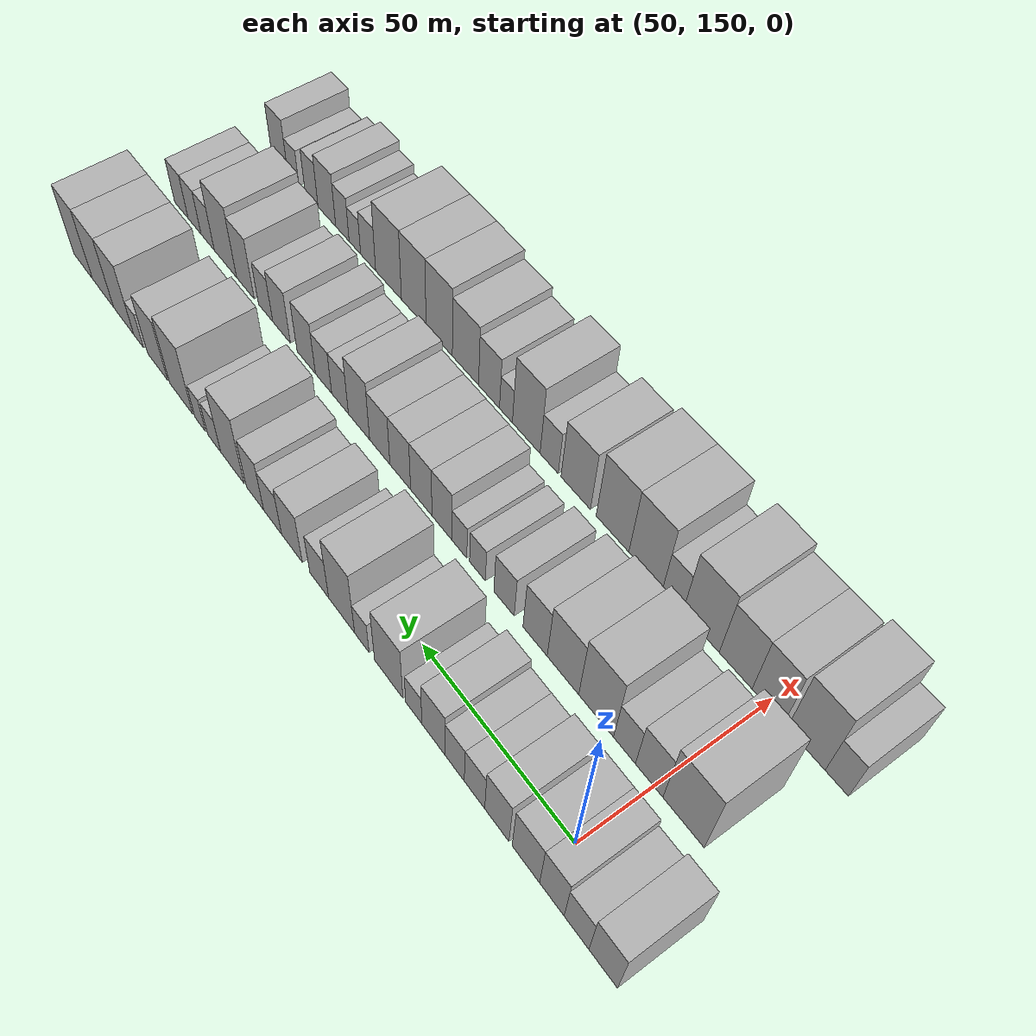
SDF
<sdf version="1.6">
 <world name="default">
  <model name="building_49">
   <static>1</static>
   <pose>50.0000 129.5451 0 0.000000 0.000000 0.000000</pose>
   <link name="link">
    <pose>0 0 9.00 0 0 0</pose>
    <collision name="collision"><geometry><box><size>20.0000 8.0616 18.0000</size></box></geometry></collision>
    <visual name="visual">
     <cast_shadows>0</cast_shadows>
     <geometry><box><size>20.0000 8.0616 18.0000</size></box></geometry>
     <material>
      <script>
       <uri>model://HANNAS_wall/materials/scripts</uri>
       <uri>model://HANNAS_wall/materials/textures</uri>
       <name>vrc/HANNAS_wall</name>
      </script>
     </material>
    </visual>
   </link>
  </model>
  <model name="building_50">
   <static>1</static>
   <pose>50.0000 137.1619 0 0.000000 0.000000 0.000000</pose>
   <link name="link">
    <pose>0 0 7.50 0 0 0</pose>
    <collision name="collision"><geometry><box><size>20.0000 7.1721 15.0000</size></box></geometry></collision>
    <visual name="visual">
     <cast_shadows>0</cast_shadows>
     <geometry><box><size>20.0000 7.1721 15.0000</size></box></geometry>
     <material>
      <script>
       <uri>model://HANNAS_wall/materials/scripts</uri>
       <uri>model://HANNAS_wall/materials/textures</uri>
       <name>vrc/HANNAS_wall</name>
      </script>
     </material>
    </visual>
   </link>
  </model>
  <model name="building_51">
   <static>1</static>
   <pose>50.0000 144.3890 0 0.000000 0.000000 0.000000</pose>
   <link name="link">
    <pose>0 0 9.00 0 0 0</pose>
    <collision name="collision"><geometry><box><size>20.0000 7.2822 18.0000</size></box></geometry></collision>
    <visual name="visual">
     <cast_shadows>0</cast_shadows>
     <geometry><box><size>20.0000 7.2822 18.0000</size></box></geometry>
     <material>
      <script>
       <uri>model://HANNAS_wall/materials/scripts</uri>
       <uri>model://HANNAS_wall/materials/textures</uri>
       <name>vrc/HANNAS_wall</name>
      </script>
     </material>
    </visual>
   </link>
  </model>
  <model name="building_52">
   <static>1</static>
   <pose>50.0000 152.2373 0 0.000000 0.000000 0.000000</pose>
   <link name="link">
    <pose>0 0 9.00 0 0 0</pose>
    <collision name="collision"><geometry><box><size>20.0000 8.4143 18.0000</size></box></geometry></collision>
    <visual name="visual">
     <cast_shadows>0</cast_shadows>
     <geometry><box><size>20.0000 8.4143 18.0000</size></box></geometry>
     <material>
      <script>
       <uri>model://HANNAS_wall/materials/scripts</uri>
       <uri>model://HANNAS_wall/materials/textures</uri>
       <name>vrc/HANNAS_wall</name>
      </script>
     </material>
    </visual>
   </link>
  </model>
  <model name="building_53">
   <static>1</static>
   <pose>50.0000 161.2836 0 0.000000 0.000000 0.000000</pose>
   <link name="link">
    <pose>0 0 9.00 0 0 0</pose>
    <collision name="collision"><geometry><box><size>20.0000 7.6783 18.0000</size></box></geometry></collision>
    <visual name="visual">
     <cast_shadows>0</cast_shadows>
     <geometry><box><size>20.0000 7.6783 18.0000</size></box></geometry>
     <material>
      <script>
       <uri>model://HANNAS_wall/materials/scripts</uri>
       <uri>model://HANNAS_wall/materials/textures</uri>
       <name>vrc/HANNAS_wall</name>
      </script>
     </material>
    </visual>
   </link>
  </model>
  <model name="building_54">
   <static>1</static>
   <pose>50.0000 168.4406 0 0.000000 0.000000 0.000000</pose>
   <link name="link">
    <pose>0 0 7.50 0 0 0</pose>
    <collision name="collision"><geometry><box><size>20.0000 6.6355 15.0000</size></box></geometry></collision>
    <visual name="visual">
     <cast_shadows>0</cast_shadows>
     <geometry><box><size>20.0000 6.6355 15.0000</size></box></geometry>
     <material>
      <script>
       <uri>model://HANNAS_wall/materials/scripts</uri>
       <uri>model://HANNAS_wall/materials/textures</uri>
       <name>vrc/HANNAS_wall</name>
      </script>
     </material>
    </visual>
   </link>
  </model>
  <model name="building_55">
   <static>1</static>
   <pose>50.0000 174.9485 0 0.000000 0.000000 0.000000</pose>
   <link name="link">
    <pose>0 0 7.50 0 0 0</pose>
    <collision name="collision"><geometry><box><size>20.0000 6.3804 15.0000</size></box></geometry></collision>
    <visual name="visual">
     <cast_shadows>0</cast_shadows>
     <geometry><box><size>20.0000 6.3804 15.0000</size></box></geometry>
     <material>
      <script>
       <uri>model://HANNAS_wall/materials/scripts</uri>
       <uri>model://HANNAS_wall/materials/textures</uri>
       <name>vrc/HANNAS_wall</name>
      </script>
     </material>
    </visual>
   </link>
  </model>
  <model name="building_56">
   <static>1</static>
   <pose>50.0000 182.0688 0 0.000000 0.000000 0.000000</pose>
   <link name="link">
    <pose>0 0 9.00 0 0 0</pose>
    <collision name="collision"><geometry><box><size>20.0000 7.8603 18.0000</size></box></geometry></collision>
    <visual name="visual">
     <cast_shadows>0</cast_shadows>
     <geometry><box><size>20.0000 7.8603 18.0000</size></box></geometry>
     <material>
      <script>
       <uri>model://HANNAS_wall/materials/scripts</uri>
       <uri>model://HANNAS_wall/materials/textures</uri>
       <name>vrc/HANNAS_wall</name>
      </script>
     </material>
    </visual>
   </link>
  </model>
  <model name="building_57">
   <static>1</static>
   <pose>50.0000 188.8283 0 0.000000 0.000000 0.000000</pose>
   <link name="link">
    <pose>0 0 6.00 0 0 0</pose>
    <collision name="collision"><geometry><box><size>20.0000 5.6586 12.0000</size></box></geometry></collision>
    <visual name="visual">
     <cast_shadows>0</cast_shadows>
     <geometry><box><size>20.0000 5.6586 12.0000</size></box></geometry>
     <material>
      <script>
       <uri>model://HANNAS_wall/materials/scripts</uri>
       <uri>model://HANNAS_wall/materials/textures</uri>
       <name>vrc/HANNAS_wall</name>
      </script>
     </material>
    </visual>
   </link>
  </model>
  <model name="building_58">
   <static>1</static>
   <pose>50.0000 197.7413 0 0.000000 0.000000 0.000000</pose>
   <link name="link">
    <pose>0 0 10.50 0 0 0</pose>
    <collision name="collision"><geometry><box><size>20.0000 10.1673 21.0000</size></box></geometry></collision>
    <visual name="visual">
     <cast_shadows>0</cast_shadows>
     <geometry><box><size>20.0000 10.1673 21.0000</size></box></geometry>
     <material>
      <script>
       <uri>model://HANNAS_wall/materials/scripts</uri>
       <uri>model://HANNAS_wall/materials/textures</uri>
       <name>vrc/HANNAS_wall</name>
      </script>
     </material>
    </visual>
   </link>
  </model>
  <model name="building_59">
   <static>1</static>
   <pose>50.0000 207.5146 0 0.000000 0.000000 0.000000</pose>
   <link name="link">
    <pose>0 0 6.00 0 0 0</pose>
    <collision name="collision"><geometry><box><size>20.0000 5.3793 12.0000</size></box></geometry></collision>
    <visual name="visual">
     <cast_shadows>0</cast_shadows>
     <geometry><box><size>20.0000 5.3793 12.0000</size></box></geometry>
     <material>
      <script>
       <uri>model://HANNAS_wall/materials/scripts</uri>
       <uri>model://HANNAS_wall/materials/textures</uri>
       <name>vrc/HANNAS_wall</name>
      </script>
     </material>
    </visual>
   </link>
  </model>
  <model name="building_60">
   <static>1</static>
   <pose>50.0000 215.1342 0 0.000000 0.000000 0.000000</pose>
   <link name="link">
    <pose>0 0 12.00 0 0 0</pose>
    <collision name="collision"><geometry><box><size>20.0000 9.8598 24.0000</size></box></geometry></collision>
    <visual name="visual">
     <cast_shadows>0</cast_shadows>
     <geometry><box><size>20.0000 9.8598 24.0000</size></box></geometry>
     <material>
      <script>
       <uri>model://HANNAS_wall/materials/scripts</uri>
       <uri>model://HANNAS_wall/materials/textures</uri>
       <name>vrc/HANNAS_wall</name>
      </script>
     </material>
    </visual>
   </link>
  </model>
  <model name="building_61">
   <static>1</static>
   <pose>50.0000 223.7643 0 0.000000 0.000000 0.000000</pose>
   <link name="link">
    <pose>0 0 7.50 0 0 0</pose>
    <collision name="collision"><geometry><box><size>20.0000 7.4004 15.0000</size></box></geometry></collision>
    <visual name="visual">
     <cast_shadows>0</cast_shadows>
     <geometry><box><size>20.0000 7.4004 15.0000</size></box></geometry>
     <material>
      <script>
       <uri>model://HANNAS_wall/materials/scripts</uri>
       <uri>model://HANNAS_wall/materials/textures</uri>
       <name>vrc/HANNAS_wall</name>
      </script>
     </material>
    </visual>
   </link>
  </model>
  <model name="building_62">
   <static>1</static>
   <pose>50.0000 234.6617 0 0.000000 0.000000 0.000000</pose>
   <link name="link">
    <pose>0 0 9.00 0 0 0</pose>
    <collision name="collision"><geometry><box><size>20.0000 8.3944 18.0000</size></box></geometry></collision>
    <visual name="visual">
     <cast_shadows>0</cast_shadows>
     <geometry><box><size>20.0000 8.3944 18.0000</size></box></geometry>
     <material>
      <script>
       <uri>model://HANNAS_wall/materials/scripts</uri>
       <uri>model://HANNAS_wall/materials/textures</uri>
       <name>vrc/HANNAS_wall</name>
      </script>
     </material>
    </visual>
   </link>
  </model>
  <model name="building_63">
   <static>1</static>
   <pose>50.0000 242.5920 0 0.000000 0.000000 0.000000</pose>
   <link name="link">
    <pose>0 0 7.50 0 0 0</pose>
    <collision name="collision"><geometry><box><size>20.0000 7.4664 15.0000</size></box></geometry></collision>
    <visual name="visual">
     <cast_shadows>0</cast_shadows>
     <geometry><box><size>20.0000 7.4664 15.0000</size></box></geometry>
     <material>
      <script>
       <uri>model://HANNAS_wall/materials/scripts</uri>
       <uri>model://HANNAS_wall/materials/textures</uri>
       <name>vrc/HANNAS_wall</name>
      </script>
     </material>
    </visual>
   </link>
  </model>
  <model name="building_64">
   <static>1</static>
   <pose>50.0000 250.0155 0 0.000000 0.000000 0.000000</pose>
   <link name="link">
    <pose>0 0 9.00 0 0 0</pose>
    <collision name="collision"><geometry><box><size>20.0000 7.3805 18.0000</size></box></geometry></collision>
    <visual name="visual">
     <cast_shadows>0</cast_shadows>
     <geometry><box><size>20.0000 7.3805 18.0000</size></box></geometry>
     <material>
      <script>
       <uri>model://HANNAS_wall/materials/scripts</uri>
       <uri>model://HANNAS_wall/materials/textures</uri>
       <name>vrc/HANNAS_wall</name>
      </script>
     </material>
    </visual>
   </link>
  </model>
  <model name="building_65">
   <static>1</static>
   <pose>50.0000 259.8513 0 0.000000 0.000000 0.000000</pose>
   <link name="link">
    <pose>0 0 12.00 0 0 0</pose>
    <collision name="collision"><geometry><box><size>20.0000 10.2910 24.0000</size></box></geometry></collision>
    <visual name="visual">
     <cast_shadows>0</cast_shadows>
     <geometry><box><size>20.0000 10.2910 24.0000</size></box></geometry>
     <material>
      <script>
       <uri>model://HANNAS_wall/materials/scripts</uri>
       <uri>model://HANNAS_wall/materials/textures</uri>
       <name>vrc/HANNAS_wall</name>
      </script>
     </material>
    </visual>
   </link>
  </model>
  <model name="building_66">
   <static>1</static>
   <pose>50.0000 267.9098 0 0.000000 0.000000 0.000000</pose>
   <link name="link">
    <pose>0 0 6.00 0 0 0</pose>
    <collision name="collision"><geometry><box><size>20.0000 5.8261 12.0000</size></box></geometry></collision>
    <visual name="visual">
     <cast_shadows>0</cast_shadows>
     <geometry><box><size>20.0000 5.8261 12.0000</size></box></geometry>
     <material>
      <script>
       <uri>model://HANNAS_wall/materials/scripts</uri>
       <uri>model://HANNAS_wall/materials/textures</uri>
       <name>vrc/HANNAS_wall</name>
      </script>
     </material>
    </visual>
   </link>
  </model>
  <model name="building_67">
   <static>1</static>
   <pose>50.0000 274.2512 0 0.000000 0.000000 0.000000</pose>
   <link name="link">
    <pose>0 0 6.00 0 0 0</pose>
    <collision name="collision"><geometry><box><size>20.0000 4.8566 12.0000</size></box></geometry></collision>
    <visual name="visual">
     <cast_shadows>0</cast_shadows>
     <geometry><box><size>20.0000 4.8566 12.0000</size></box></geometry>
     <material>
      <script>
       <uri>model://HANNAS_wall/materials/scripts</uri>
       <uri>model://HANNAS_wall/materials/textures</uri>
       <name>vrc/HANNAS_wall</name>
      </script>
     </material>
    </visual>
   </link>
  </model>
  <model name="building_68">
   <static>1</static>
   <pose>50.0000 283.0747 0 0.000000 0.000000 0.000000</pose>
   <link name="link">
    <pose>0 0 12.00 0 0 0</pose>
    <collision name="collision"><geometry><box><size>20.0000 10.7905 24.0000</size></box></geometry></collision>
    <visual name="visual">
     <cast_shadows>0</cast_shadows>
     <geometry><box><size>20.0000 10.7905 24.0000</size></box></geometry>
     <material>
      <script>
       <uri>model://HANNAS_wall/materials/scripts</uri>
       <uri>model://HANNAS_wall/materials/textures</uri>
       <name>vrc/HANNAS_wall</name>
      </script>
     </material>
    </visual>
   </link>
  </model>
  <model name="building_69">
   <static>1</static>
   <pose>50.0000 294.3705 0 0.000000 0.000000 0.000000</pose>
   <link name="link">
    <pose>0 0 10.50 0 0 0</pose>
    <collision name="collision"><geometry><box><size>20.0000 9.8012 21.0000</size></box></geometry></collision>
    <visual name="visual">
     <cast_shadows>0</cast_shadows>
     <geometry><box><size>20.0000 9.8012 21.0000</size></box></geometry>
     <material>
      <script>
       <uri>model://HANNAS_wall/materials/scripts</uri>
       <uri>model://HANNAS_wall/materials/textures</uri>
       <name>vrc/HANNAS_wall</name>
      </script>
     </material>
    </visual>
   </link>
  </model>
  <model name="building_70">
   <static>1</static>
   <pose>50.0000 303.7169 0 0.000000 0.000000 0.000000</pose>
   <link name="link">
    <pose>0 0 6.00 0 0 0</pose>
    <collision name="collision"><geometry><box><size>20.0000 4.8916 12.0000</size></box></geometry></collision>
    <visual name="visual">
     <cast_shadows>0</cast_shadows>
     <geometry><box><size>20.0000 4.8916 12.0000</size></box></geometry>
     <material>
      <script>
       <uri>model://HANNAS_wall/materials/scripts</uri>
       <uri>model://HANNAS_wall/materials/textures</uri>
       <name>vrc/HANNAS_wall</name>
      </script>
     </material>
    </visual>
   </link>
  </model>
  <model name="building_71">
   <static>1</static>
   <pose>50.0000 311.3062 0 0.000000 0.000000 0.000000</pose>
   <link name="link">
    <pose>0 0 12.00 0 0 0</pose>
    <collision name="collision"><geometry><box><size>20.0000 10.2868 24.0000</size></box></geometry></collision>
    <visual name="visual">
     <cast_shadows>0</cast_shadows>
     <geometry><box><size>20.0000 10.2868 24.0000</size></box></geometry>
     <material>
      <script>
       <uri>model://HANNAS_wall/materials/scripts</uri>
       <uri>model://HANNAS_wall/materials/textures</uri>
       <name>vrc/HANNAS_wall</name>
      </script>
     </material>
    </visual>
   </link>
  </model>
  <model name="building_72">
   <static>1</static>
   <pose>50.0000 322.0030 0 0.000000 0.000000 0.000000</pose>
   <link name="link">
    <pose>0 0 12.00 0 0 0</pose>
    <collision name="collision"><geometry><box><size>20.0000 11.1070 24.0000</size></box></geometry></collision>
    <visual name="visual">
     <cast_shadows>0</cast_shadows>
     <geometry><box><size>20.0000 11.1070 24.0000</size></box></geometry>
     <material>
      <script>
       <uri>model://HANNAS_wall/materials/scripts</uri>
       <uri>model://HANNAS_wall/materials/textures</uri>
       <name>vrc/HANNAS_wall</name>
      </script>
     </material>
    </visual>
   </link>
  </model>
  <model name="building_73">
   <static>1</static>
   <pose>50.0000 332.5309 0 0.000000 0.000000 0.000000</pose>
   <link name="link">
    <pose>0 0 12.00 0 0 0</pose>
    <collision name="collision"><geometry><box><size>20.0000 9.9487 24.0000</size></box></geometry></collision>
    <visual name="visual">
     <cast_shadows>0</cast_shadows>
     <geometry><box><size>20.0000 9.9487 24.0000</size></box></geometry>
     <material>
      <script>
       <uri>model://HANNAS_wall/materials/scripts</uri>
       <uri>model://HANNAS_wall/materials/textures</uri>
       <name>vrc/HANNAS_wall</name>
      </script>
     </material>
    </visual>
   </link>
  </model>
  <model name="building_122">
   <static>1</static>
   <pose>79.0000 141.3398 0 0.000000 0.000000 0.000000</pose>
   <link name="link">
    <pose>0 0 12.00 0 0 0</pose>
    <collision name="collision"><geometry><box><size>20.0000 11.8507 24.0000</size></box></geometry></collision>
    <visual name="visual">
     <cast_shadows>0</cast_shadows>
     <geometry><box><size>20.0000 11.8507 24.0000</size></box></geometry>
     <material>
      <script>
       <uri>model://HANNAS_wall/materials/scripts</uri>
       <uri>model://HANNAS_wall/materials/textures</uri>
       <name>vrc/HANNAS_wall</name>
      </script>
     </material>
    </visual>
   </link>
  </model>
  <model name="building_123">
   <static>1</static>
   <pose>79.0000 151.3553 0 0.000000 0.000000 0.000000</pose>
   <link name="link">
    <pose>0 0 9.00 0 0 0</pose>
    <collision name="collision"><geometry><box><size>20.0000 8.1802 18.0000</size></box></geometry></collision>
    <visual name="visual">
     <cast_shadows>0</cast_shadows>
     <geometry><box><size>20.0000 8.1802 18.0000</size></box></geometry>
     <material>
      <script>
       <uri>model://HANNAS_wall/materials/scripts</uri>
       <uri>model://HANNAS_wall/materials/textures</uri>
       <name>vrc/HANNAS_wall</name>
      </script>
     </material>
    </visual>
   </link>
  </model>
  <model name="building_124">
   <static>1</static>
   <pose>79.0000 158.7674 0 0.000000 0.000000 0.000000</pose>
   <link name="link">
    <pose>0 0 7.50 0 0 0</pose>
    <collision name="collision"><geometry><box><size>20.0000 6.6440 15.0000</size></box></geometry></collision>
    <visual name="visual">
     <cast_shadows>0</cast_shadows>
     <geometry><box><size>20.0000 6.6440 15.0000</size></box></geometry>
     <material>
      <script>
       <uri>model://HANNAS_wall/materials/scripts</uri>
       <uri>model://HANNAS_wall/materials/textures</uri>
       <name>vrc/HANNAS_wall</name>
      </script>
     </material>
    </visual>
   </link>
  </model>
  <model name="building_125">
   <static>1</static>
   <pose>79.0000 167.5616 0 0.000000 0.000000 0.000000</pose>
   <link name="link">
    <pose>0 0 12.00 0 0 0</pose>
    <collision name="collision"><geometry><box><size>20.0000 10.9445 24.0000</size></box></geometry></collision>
    <visual name="visual">
     <cast_shadows>0</cast_shadows>
     <geometry><box><size>20.0000 10.9445 24.0000</size></box></geometry>
     <material>
      <script>
       <uri>model://HANNAS_wall/materials/scripts</uri>
       <uri>model://HANNAS_wall/materials/textures</uri>
       <name>vrc/HANNAS_wall</name>
      </script>
     </material>
    </visual>
   </link>
  </model>
  <model name="building_126">
   <static>1</static>
   <pose>79.0000 178.1666 0 0.000000 0.000000 0.000000</pose>
   <link name="link">
    <pose>0 0 10.50 0 0 0</pose>
    <collision name="collision"><geometry><box><size>20.0000 10.2654 21.0000</size></box></geometry></collision>
    <visual name="visual">
     <cast_shadows>0</cast_shadows>
     <geometry><box><size>20.0000 10.2654 21.0000</size></box></geometry>
     <material>
      <script>
       <uri>model://HANNAS_wall/materials/scripts</uri>
       <uri>model://HANNAS_wall/materials/textures</uri>
       <name>vrc/HANNAS_wall</name>
      </script>
     </material>
    </visual>
   </link>
  </model>
  <model name="building_127">
   <static>1</static>
   <pose>79.0000 187.3641 0 0.000000 0.000000 0.000000</pose>
   <link name="link">
    <pose>0 0 9.00 0 0 0</pose>
    <collision name="collision"><geometry><box><size>20.0000 8.1296 18.0000</size></box></geometry></collision>
    <visual name="visual">
     <cast_shadows>0</cast_shadows>
     <geometry><box><size>20.0000 8.1296 18.0000</size></box></geometry>
     <material>
      <script>
       <uri>model://HANNAS_wall/materials/scripts</uri>
       <uri>model://HANNAS_wall/materials/textures</uri>
       <name>vrc/HANNAS_wall</name>
      </script>
     </material>
    </visual>
   </link>
  </model>
  <model name="building_128">
   <static>1</static>
   <pose>79.0000 197.9664 0 0.000000 0.000000 0.000000</pose>
   <link name="link">
    <pose>0 0 7.50 0 0 0</pose>
    <collision name="collision"><geometry><box><size>20.0000 7.0751 15.0000</size></box></geometry></collision>
    <visual name="visual">
     <cast_shadows>0</cast_shadows>
     <geometry><box><size>20.0000 7.0751 15.0000</size></box></geometry>
     <material>
      <script>
       <uri>model://HANNAS_wall/materials/scripts</uri>
       <uri>model://HANNAS_wall/materials/textures</uri>
       <name>vrc/HANNAS_wall</name>
      </script>
     </material>
    </visual>
   </link>
  </model>
  <model name="building_129">
   <static>1</static>
   <pose>79.0000 207.3366 0 0.000000 0.000000 0.000000</pose>
   <link name="link">
    <pose>0 0 6.00 0 0 0</pose>
    <collision name="collision"><geometry><box><size>20.0000 5.6652 12.0000</size></box></geometry></collision>
    <visual name="visual">
     <cast_shadows>0</cast_shadows>
     <geometry><box><size>20.0000 5.6652 12.0000</size></box></geometry>
     <material>
      <script>
       <uri>model://HANNAS_wall/materials/scripts</uri>
       <uri>model://HANNAS_wall/materials/textures</uri>
       <name>vrc/HANNAS_wall</name>
      </script>
     </material>
    </visual>
   </link>
  </model>
  <model name="building_130">
   <static>1</static>
   <pose>79.0000 213.8811 0 0.000000 0.000000 0.000000</pose>
   <link name="link">
    <pose>0 0 6.00 0 0 0</pose>
    <collision name="collision"><geometry><box><size>20.0000 5.4238 12.0000</size></box></geometry></collision>
    <visual name="visual">
     <cast_shadows>0</cast_shadows>
     <geometry><box><size>20.0000 5.4238 12.0000</size></box></geometry>
     <material>
      <script>
       <uri>model://HANNAS_wall/materials/scripts</uri>
       <uri>model://HANNAS_wall/materials/textures</uri>
       <name>vrc/HANNAS_wall</name>
      </script>
     </material>
    </visual>
   </link>
  </model>
  <model name="building_131">
   <static>1</static>
   <pose>79.0000 220.3223 0 0.000000 0.000000 0.000000</pose>
   <link name="link">
    <pose>0 0 9.00 0 0 0</pose>
    <collision name="collision"><geometry><box><size>20.0000 7.4588 18.0000</size></box></geometry></collision>
    <visual name="visual">
     <cast_shadows>0</cast_shadows>
     <geometry><box><size>20.0000 7.4588 18.0000</size></box></geometry>
     <material>
      <script>
       <uri>model://HANNAS_wall/materials/scripts</uri>
       <uri>model://HANNAS_wall/materials/textures</uri>
       <name>vrc/HANNAS_wall</name>
      </script>
     </material>
    </visual>
   </link>
  </model>
  <model name="building_132">
   <static>1</static>
   <pose>79.0000 228.1430 0 0.000000 0.000000 0.000000</pose>
   <link name="link">
    <pose>0 0 9.00 0 0 0</pose>
    <collision name="collision"><geometry><box><size>20.0000 8.1826 18.0000</size></box></geometry></collision>
    <visual name="visual">
     <cast_shadows>0</cast_shadows>
     <geometry><box><size>20.0000 8.1826 18.0000</size></box></geometry>
     <material>
      <script>
       <uri>model://HANNAS_wall/materials/scripts</uri>
       <uri>model://HANNAS_wall/materials/textures</uri>
       <name>vrc/HANNAS_wall</name>
      </script>
     </material>
    </visual>
   </link>
  </model>
  <model name="building_133">
   <static>1</static>
   <pose>79.0000 236.2981 0 0.000000 0.000000 0.000000</pose>
   <link name="link">
    <pose>0 0 9.00 0 0 0</pose>
    <collision name="collision"><geometry><box><size>20.0000 8.1276 18.0000</size></box></geometry></collision>
    <visual name="visual">
     <cast_shadows>0</cast_shadows>
     <geometry><box><size>20.0000 8.1276 18.0000</size></box></geometry>
     <material>
      <script>
       <uri>model://HANNAS_wall/materials/scripts</uri>
       <uri>model://HANNAS_wall/materials/textures</uri>
       <name>vrc/HANNAS_wall</name>
      </script>
     </material>
    </visual>
   </link>
  </model>
  <model name="building_134">
   <static>1</static>
   <pose>79.0000 244.4405 0 0.000000 0.000000 0.000000</pose>
   <link name="link">
    <pose>0 0 9.00 0 0 0</pose>
    <collision name="collision"><geometry><box><size>20.0000 8.1572 18.0000</size></box></geometry></collision>
    <visual name="visual">
     <cast_shadows>0</cast_shadows>
     <geometry><box><size>20.0000 8.1572 18.0000</size></box></geometry>
     <material>
      <script>
       <uri>model://HANNAS_wall/materials/scripts</uri>
       <uri>model://HANNAS_wall/materials/textures</uri>
       <name>vrc/HANNAS_wall</name>
      </script>
     </material>
    </visual>
   </link>
  </model>
  <model name="building_135">
   <static>1</static>
   <pose>79.0000 252.9065 0 0.000000 0.000000 0.000000</pose>
   <link name="link">
    <pose>0 0 10.50 0 0 0</pose>
    <collision name="collision"><geometry><box><size>20.0000 8.7747 21.0000</size></box></geometry></collision>
    <visual name="visual">
     <cast_shadows>0</cast_shadows>
     <geometry><box><size>20.0000 8.7747 21.0000</size></box></geometry>
     <material>
      <script>
       <uri>model://HANNAS_wall/materials/scripts</uri>
       <uri>model://HANNAS_wall/materials/textures</uri>
       <name>vrc/HANNAS_wall</name>
      </script>
     </material>
    </visual>
   </link>
  </model>
  <model name="building_136">
   <static>1</static>
   <pose>79.0000 260.8196 0 0.000000 0.000000 0.000000</pose>
   <link name="link">
    <pose>0 0 7.50 0 0 0</pose>
    <collision name="collision"><geometry><box><size>20.0000 7.0515 15.0000</size></box></geometry></collision>
    <visual name="visual">
     <cast_shadows>0</cast_shadows>
     <geometry><box><size>20.0000 7.0515 15.0000</size></box></geometry>
     <material>
      <script>
       <uri>model://HANNAS_wall/materials/scripts</uri>
       <uri>model://HANNAS_wall/materials/textures</uri>
       <name>vrc/HANNAS_wall</name>
      </script>
     </material>
    </visual>
   </link>
  </model>
  <model name="building_137">
   <static>1</static>
   <pose>79.0000 267.8758 0 0.000000 0.000000 0.000000</pose>
   <link name="link">
    <pose>0 0 7.50 0 0 0</pose>
    <collision name="collision"><geometry><box><size>20.0000 7.0611 15.0000</size></box></geometry></collision>
    <visual name="visual">
     <cast_shadows>0</cast_shadows>
     <geometry><box><size>20.0000 7.0611 15.0000</size></box></geometry>
     <material>
      <script>
       <uri>model://HANNAS_wall/materials/scripts</uri>
       <uri>model://HANNAS_wall/materials/textures</uri>
       <name>vrc/HANNAS_wall</name>
      </script>
     </material>
    </visual>
   </link>
  </model>
  <model name="building_138">
   <static>1</static>
   <pose>79.0000 275.4443 0 0.000000 0.000000 0.000000</pose>
   <link name="link">
    <pose>0 0 9.00 0 0 0</pose>
    <collision name="collision"><geometry><box><size>20.0000 8.0758 18.0000</size></box></geometry></collision>
    <visual name="visual">
     <cast_shadows>0</cast_shadows>
     <geometry><box><size>20.0000 8.0758 18.0000</size></box></geometry>
     <material>
      <script>
       <uri>model://HANNAS_wall/materials/scripts</uri>
       <uri>model://HANNAS_wall/materials/textures</uri>
       <name>vrc/HANNAS_wall</name>
      </script>
     </material>
    </visual>
   </link>
  </model>
  <model name="building_139">
   <static>1</static>
   <pose>79.0000 286.5154 0 0.000000 0.000000 0.000000</pose>
   <link name="link">
    <pose>0 0 9.00 0 0 0</pose>
    <collision name="collision"><geometry><box><size>20.0000 8.0664 18.0000</size></box></geometry></collision>
    <visual name="visual">
     <cast_shadows>0</cast_shadows>
     <geometry><box><size>20.0000 8.0664 18.0000</size></box></geometry>
     <material>
      <script>
       <uri>model://HANNAS_wall/materials/scripts</uri>
       <uri>model://HANNAS_wall/materials/textures</uri>
       <name>vrc/HANNAS_wall</name>
      </script>
     </material>
    </visual>
   </link>
  </model>
  <model name="building_140">
   <static>1</static>
   <pose>79.0000 293.8497 0 0.000000 0.000000 0.000000</pose>
   <link name="link">
    <pose>0 0 7.50 0 0 0</pose>
    <collision name="collision"><geometry><box><size>20.0000 6.6021 15.0000</size></box></geometry></collision>
    <visual name="visual">
     <cast_shadows>0</cast_shadows>
     <geometry><box><size>20.0000 6.6021 15.0000</size></box></geometry>
     <material>
      <script>
       <uri>model://HANNAS_wall/materials/scripts</uri>
       <uri>model://HANNAS_wall/materials/textures</uri>
       <name>vrc/HANNAS_wall</name>
      </script>
     </material>
    </visual>
   </link>
  </model>
  <model name="building_141">
   <static>1</static>
   <pose>79.0000 303.3744 0 0.000000 0.000000 0.000000</pose>
   <link name="link">
    <pose>0 0 10.50 0 0 0</pose>
    <collision name="collision"><geometry><box><size>20.0000 8.4475 21.0000</size></box></geometry></collision>
    <visual name="visual">
     <cast_shadows>0</cast_shadows>
     <geometry><box><size>20.0000 8.4475 21.0000</size></box></geometry>
     <material>
      <script>
       <uri>model://HANNAS_wall/materials/scripts</uri>
       <uri>model://HANNAS_wall/materials/textures</uri>
       <name>vrc/HANNAS_wall</name>
      </script>
     </material>
    </visual>
   </link>
  </model>
  <model name="building_142">
   <static>1</static>
   <pose>79.0000 313.0791 0 0.000000 0.000000 0.000000</pose>
   <link name="link">
    <pose>0 0 12.00 0 0 0</pose>
    <collision name="collision"><geometry><box><size>20.0000 10.9619 24.0000</size></box></geometry></collision>
    <visual name="visual">
     <cast_shadows>0</cast_shadows>
     <geometry><box><size>20.0000 10.9619 24.0000</size></box></geometry>
     <material>
      <script>
       <uri>model://HANNAS_wall/materials/scripts</uri>
       <uri>model://HANNAS_wall/materials/textures</uri>
       <name>vrc/HANNAS_wall</name>
      </script>
     </material>
    </visual>
   </link>
  </model>
  <model name="building_143">
   <static>1</static>
   <pose>79.0000 321.8888 0 0.000000 0.000000 0.000000</pose>
   <link name="link">
    <pose>0 0 7.50 0 0 0</pose>
    <collision name="collision"><geometry><box><size>20.0000 6.6576 15.0000</size></box></geometry></collision>
    <visual name="visual">
     <cast_shadows>0</cast_shadows>
     <geometry><box><size>20.0000 6.6576 15.0000</size></box></geometry>
     <material>
      <script>
       <uri>model://HANNAS_wall/materials/scripts</uri>
       <uri>model://HANNAS_wall/materials/textures</uri>
       <name>vrc/HANNAS_wall</name>
      </script>
     </material>
    </visual>
   </link>
  </model>
  <model name="building_144">
   <static>1</static>
   <pose>79.0000 328.5299 0 0.000000 0.000000 0.000000</pose>
   <link name="link">
    <pose>0 0 7.50 0 0 0</pose>
    <collision name="collision"><geometry><box><size>20.0000 6.6245 15.0000</size></box></geometry></collision>
    <visual name="visual">
     <cast_shadows>0</cast_shadows>
     <geometry><box><size>20.0000 6.6245 15.0000</size></box></geometry>
     <material>
      <script>
       <uri>model://HANNAS_wall/materials/scripts</uri>
       <uri>model://HANNAS_wall/materials/textures</uri>
       <name>vrc/HANNAS_wall</name>
      </script>
     </material>
    </visual>
   </link>
  </model>
  <model name="building_145">
   <static>1</static>
   <pose>79.0000 335.3338 0 0.000000 0.000000 0.000000</pose>
   <link name="link">
    <pose>0 0 7.50 0 0 0</pose>
    <collision name="collision"><geometry><box><size>20.0000 6.9833 15.0000</size></box></geometry></collision>
    <visual name="visual">
     <cast_shadows>0</cast_shadows>
     <geometry><box><size>20.0000 6.9833 15.0000</size></box></geometry>
     <material>
      <script>
       <uri>model://HANNAS_wall/materials/scripts</uri>
       <uri>model://HANNAS_wall/materials/textures</uri>
       <name>vrc/HANNAS_wall</name>
      </script>
     </material>
    </visual>
   </link>
  </model>
  <model name="building_196">
   <static>1</static>
   <pose>108.0000 130.1171 0 0.000000 0.000000 0.000000</pose>
   <link name="link">
    <pose>0 0 7.50 0 0 0</pose>
    <collision name="collision"><geometry><box><size>20.0000 6.2933 15.0000</size></box></geometry></collision>
    <visual name="visual">
     <cast_shadows>0</cast_shadows>
     <geometry><box><size>20.0000 6.2933 15.0000</size></box></geometry>
     <material>
      <script>
       <uri>model://HANNAS_wall/materials/scripts</uri>
       <uri>model://HANNAS_wall/materials/textures</uri>
       <name>vrc/HANNAS_wall</name>
      </script>
     </material>
    </visual>
   </link>
  </model>
  <model name="building_197">
   <static>1</static>
   <pose>108.0000 138.5624 0 0.000000 0.000000 0.000000</pose>
   <link name="link">
    <pose>0 0 12.00 0 0 0</pose>
    <collision name="collision"><geometry><box><size>20.0000 10.5973 24.0000</size></box></geometry></collision>
    <visual name="visual">
     <cast_shadows>0</cast_shadows>
     <geometry><box><size>20.0000 10.5973 24.0000</size></box></geometry>
     <material>
      <script>
       <uri>model://HANNAS_wall/materials/scripts</uri>
       <uri>model://HANNAS_wall/materials/textures</uri>
       <name>vrc/HANNAS_wall</name>
      </script>
     </material>
    </visual>
   </link>
  </model>
  <model name="building_198">
   <static>1</static>
   <pose>108.0000 149.4087 0 0.000000 0.000000 0.000000</pose>
   <link name="link">
    <pose>0 0 10.50 0 0 0</pose>
    <collision name="collision"><geometry><box><size>20.0000 9.0954 21.0000</size></box></geometry></collision>
    <visual name="visual">
     <cast_shadows>0</cast_shadows>
     <geometry><box><size>20.0000 9.0954 21.0000</size></box></geometry>
     <material>
      <script>
       <uri>model://HANNAS_wall/materials/scripts</uri>
       <uri>model://HANNAS_wall/materials/textures</uri>
       <name>vrc/HANNAS_wall</name>
      </script>
     </material>
    </visual>
   </link>
  </model>
  <model name="building_199">
   <static>1</static>
   <pose>108.0000 158.8553 0 0.000000 0.000000 0.000000</pose>
   <link name="link">
    <pose>0 0 10.50 0 0 0</pose>
    <collision name="collision"><geometry><box><size>20.0000 9.7980 21.0000</size></box></geometry></collision>
    <visual name="visual">
     <cast_shadows>0</cast_shadows>
     <geometry><box><size>20.0000 9.7980 21.0000</size></box></geometry>
     <material>
      <script>
       <uri>model://HANNAS_wall/materials/scripts</uri>
       <uri>model://HANNAS_wall/materials/textures</uri>
       <name>vrc/HANNAS_wall</name>
      </script>
     </material>
    </visual>
   </link>
  </model>
  <model name="building_200">
   <static>1</static>
   <pose>108.0000 169.3775 0 0.000000 0.000000 0.000000</pose>
   <link name="link">
    <pose>0 0 12.00 0 0 0</pose>
    <collision name="collision"><geometry><box><size>20.0000 11.2464 24.0000</size></box></geometry></collision>
    <visual name="visual">
     <cast_shadows>0</cast_shadows>
     <geometry><box><size>20.0000 11.2464 24.0000</size></box></geometry>
     <material>
      <script>
       <uri>model://HANNAS_wall/materials/scripts</uri>
       <uri>model://HANNAS_wall/materials/textures</uri>
       <name>vrc/HANNAS_wall</name>
      </script>
     </material>
    </visual>
   </link>
  </model>
  <model name="building_201">
   <static>1</static>
   <pose>108.0000 178.2099 0 0.000000 0.000000 0.000000</pose>
   <link name="link">
    <pose>0 0 7.50 0 0 0</pose>
    <collision name="collision"><geometry><box><size>20.0000 6.4184 15.0000</size></box></geometry></collision>
    <visual name="visual">
     <cast_shadows>0</cast_shadows>
     <geometry><box><size>20.0000 6.4184 15.0000</size></box></geometry>
     <material>
      <script>
       <uri>model://HANNAS_wall/materials/scripts</uri>
       <uri>model://HANNAS_wall/materials/textures</uri>
       <name>vrc/HANNAS_wall</name>
      </script>
     </material>
    </visual>
   </link>
  </model>
  <model name="building_202">
   <static>1</static>
   <pose>108.0000 186.9274 0 0.000000 0.000000 0.000000</pose>
   <link name="link">
    <pose>0 0 12.00 0 0 0</pose>
    <collision name="collision"><geometry><box><size>20.0000 11.0165 24.0000</size></box></geometry></collision>
    <visual name="visual">
     <cast_shadows>0</cast_shadows>
     <geometry><box><size>20.0000 11.0165 24.0000</size></box></geometry>
     <material>
      <script>
       <uri>model://HANNAS_wall/materials/scripts</uri>
       <uri>model://HANNAS_wall/materials/textures</uri>
       <name>vrc/HANNAS_wall</name>
      </script>
     </material>
    </visual>
   </link>
  </model>
  <model name="building_203">
   <static>1</static>
   <pose>108.0000 197.9633 0 0.000000 0.000000 0.000000</pose>
   <link name="link">
    <pose>0 0 12.00 0 0 0</pose>
    <collision name="collision"><geometry><box><size>20.0000 11.0552 24.0000</size></box></geometry></collision>
    <visual name="visual">
     <cast_shadows>0</cast_shadows>
     <geometry><box><size>20.0000 11.0552 24.0000</size></box></geometry>
     <material>
      <script>
       <uri>model://HANNAS_wall/materials/scripts</uri>
       <uri>model://HANNAS_wall/materials/textures</uri>
       <name>vrc/HANNAS_wall</name>
      </script>
     </material>
    </visual>
   </link>
  </model>
  <model name="building_204">
   <static>1</static>
   <pose>108.0000 210.6686 0 0.000000 0.000000 0.000000</pose>
   <link name="link">
    <pose>0 0 10.50 0 0 0</pose>
    <collision name="collision"><geometry><box><size>20.0000 10.3555 21.0000</size></box></geometry></collision>
    <visual name="visual">
     <cast_shadows>0</cast_shadows>
     <geometry><box><size>20.0000 10.3555 21.0000</size></box></geometry>
     <material>
      <script>
       <uri>model://HANNAS_wall/materials/scripts</uri>
       <uri>model://HANNAS_wall/materials/textures</uri>
       <name>vrc/HANNAS_wall</name>
      </script>
     </material>
    </visual>
   </link>
  </model>
  <model name="building_205">
   <static>1</static>
   <pose>108.0000 220.1356 0 0.000000 0.000000 0.000000</pose>
   <link name="link">
    <pose>0 0 7.50 0 0 0</pose>
    <collision name="collision"><geometry><box><size>20.0000 6.5785 15.0000</size></box></geometry></collision>
    <visual name="visual">
     <cast_shadows>0</cast_shadows>
     <geometry><box><size>20.0000 6.5785 15.0000</size></box></geometry>
     <material>
      <script>
       <uri>model://HANNAS_wall/materials/scripts</uri>
       <uri>model://HANNAS_wall/materials/textures</uri>
       <name>vrc/HANNAS_wall</name>
      </script>
     </material>
    </visual>
   </link>
  </model>
  <model name="building_206">
   <static>1</static>
   <pose>108.0000 228.5758 0 0.000000 0.000000 0.000000</pose>
   <link name="link">
    <pose>0 0 12.00 0 0 0</pose>
    <collision name="collision"><geometry><box><size>20.0000 10.3019 24.0000</size></box></geometry></collision>
    <visual name="visual">
     <cast_shadows>0</cast_shadows>
     <geometry><box><size>20.0000 10.3019 24.0000</size></box></geometry>
     <material>
      <script>
       <uri>model://HANNAS_wall/materials/scripts</uri>
       <uri>model://HANNAS_wall/materials/textures</uri>
       <name>vrc/HANNAS_wall</name>
      </script>
     </material>
    </visual>
   </link>
  </model>
  <model name="building_207">
   <static>1</static>
   <pose>108.0000 236.1805 0 0.000000 0.000000 0.000000</pose>
   <link name="link">
    <pose>0 0 6.00 0 0 0</pose>
    <collision name="collision"><geometry><box><size>20.0000 4.9075 12.0000</size></box></geometry></collision>
    <visual name="visual">
     <cast_shadows>0</cast_shadows>
     <geometry><box><size>20.0000 4.9075 12.0000</size></box></geometry>
     <material>
      <script>
       <uri>model://HANNAS_wall/materials/scripts</uri>
       <uri>model://HANNAS_wall/materials/textures</uri>
       <name>vrc/HANNAS_wall</name>
      </script>
     </material>
    </visual>
   </link>
  </model>
  <model name="building_208">
   <static>1</static>
   <pose>108.0000 242.6969 0 0.000000 0.000000 0.000000</pose>
   <link name="link">
    <pose>0 0 9.00 0 0 0</pose>
    <collision name="collision"><geometry><box><size>20.0000 8.1254 18.0000</size></box></geometry></collision>
    <visual name="visual">
     <cast_shadows>0</cast_shadows>
     <geometry><box><size>20.0000 8.1254 18.0000</size></box></geometry>
     <material>
      <script>
       <uri>model://HANNAS_wall/materials/scripts</uri>
       <uri>model://HANNAS_wall/materials/textures</uri>
       <name>vrc/HANNAS_wall</name>
      </script>
     </material>
    </visual>
   </link>
  </model>
  <model name="building_209">
   <static>1</static>
   <pose>108.0000 251.9861 0 0.000000 0.000000 0.000000</pose>
   <link name="link">
    <pose>0 0 10.50 0 0 0</pose>
    <collision name="collision"><geometry><box><size>20.0000 10.4530 21.0000</size></box></geometry></collision>
    <visual name="visual">
     <cast_shadows>0</cast_shadows>
     <geometry><box><size>20.0000 10.4530 21.0000</size></box></geometry>
     <material>
      <script>
       <uri>model://HANNAS_wall/materials/scripts</uri>
       <uri>model://HANNAS_wall/materials/textures</uri>
       <name>vrc/HANNAS_wall</name>
      </script>
     </material>
    </visual>
   </link>
  </model>
  <model name="building_210">
   <static>1</static>
   <pose>108.0000 262.5881 0 0.000000 0.000000 0.000000</pose>
   <link name="link">
    <pose>0 0 12.00 0 0 0</pose>
    <collision name="collision"><geometry><box><size>20.0000 10.7508 24.0000</size></box></geometry></collision>
    <visual name="visual">
     <cast_shadows>0</cast_shadows>
     <geometry><box><size>20.0000 10.7508 24.0000</size></box></geometry>
     <material>
      <script>
       <uri>model://HANNAS_wall/materials/scripts</uri>
       <uri>model://HANNAS_wall/materials/textures</uri>
       <name>vrc/HANNAS_wall</name>
      </script>
     </material>
    </visual>
   </link>
  </model>
  <model name="building_211">
   <static>1</static>
   <pose>108.0000 273.2022 0 0.000000 0.000000 0.000000</pose>
   <link name="link">
    <pose>0 0 12.00 0 0 0</pose>
    <collision name="collision"><geometry><box><size>20.0000 10.4774 24.0000</size></box></geometry></collision>
    <visual name="visual">
     <cast_shadows>0</cast_shadows>
     <geometry><box><size>20.0000 10.4774 24.0000</size></box></geometry>
     <material>
      <script>
       <uri>model://HANNAS_wall/materials/scripts</uri>
       <uri>model://HANNAS_wall/materials/textures</uri>
       <name>vrc/HANNAS_wall</name>
      </script>
     </material>
    </visual>
   </link>
  </model>
  <model name="building_212">
   <static>1</static>
   <pose>108.0000 284.0895 0 0.000000 0.000000 0.000000</pose>
   <link name="link">
    <pose>0 0 12.00 0 0 0</pose>
    <collision name="collision"><geometry><box><size>20.0000 11.2973 24.0000</size></box></geometry></collision>
    <visual name="visual">
     <cast_shadows>0</cast_shadows>
     <geometry><box><size>20.0000 11.2973 24.0000</size></box></geometry>
     <material>
      <script>
       <uri>model://HANNAS_wall/materials/scripts</uri>
       <uri>model://HANNAS_wall/materials/textures</uri>
       <name>vrc/HANNAS_wall</name>
      </script>
     </material>
    </visual>
   </link>
  </model>
  <model name="building_213">
   <static>1</static>
   <pose>108.0000 293.1005 0 0.000000 0.000000 0.000000</pose>
   <link name="link">
    <pose>0 0 7.50 0 0 0</pose>
    <collision name="collision"><geometry><box><size>20.0000 6.7246 15.0000</size></box></geometry></collision>
    <visual name="visual">
     <cast_shadows>0</cast_shadows>
     <geometry><box><size>20.0000 6.7246 15.0000</size></box></geometry>
     <material>
      <script>
       <uri>model://HANNAS_wall/materials/scripts</uri>
       <uri>model://HANNAS_wall/materials/textures</uri>
       <name>vrc/HANNAS_wall</name>
      </script>
     </material>
    </visual>
   </link>
  </model>
  <model name="building_214">
   <static>1</static>
   <pose>108.0000 299.0886 0 0.000000 0.000000 0.000000</pose>
   <link name="link">
    <pose>0 0 6.00 0 0 0</pose>
    <collision name="collision"><geometry><box><size>20.0000 5.2517 12.0000</size></box></geometry></collision>
    <visual name="visual">
     <cast_shadows>0</cast_shadows>
     <geometry><box><size>20.0000 5.2517 12.0000</size></box></geometry>
     <material>
      <script>
       <uri>model://HANNAS_wall/materials/scripts</uri>
       <uri>model://HANNAS_wall/materials/textures</uri>
       <name>vrc/HANNAS_wall</name>
      </script>
     </material>
    </visual>
   </link>
  </model>
  <model name="building_215">
   <static>1</static>
   <pose>108.0000 304.8124 0 0.000000 0.000000 0.000000</pose>
   <link name="link">
    <pose>0 0 7.50 0 0 0</pose>
    <collision name="collision"><geometry><box><size>20.0000 6.1958 15.0000</size></box></geometry></collision>
    <visual name="visual">
     <cast_shadows>0</cast_shadows>
     <geometry><box><size>20.0000 6.1958 15.0000</size></box></geometry>
     <material>
      <script>
       <uri>model://HANNAS_wall/materials/scripts</uri>
       <uri>model://HANNAS_wall/materials/textures</uri>
       <name>vrc/HANNAS_wall</name>
      </script>
     </material>
    </visual>
   </link>
  </model>
  <model name="building_216">
   <static>1</static>
   <pose>108.0000 312.0722 0 0.000000 0.000000 0.000000</pose>
   <link name="link">
    <pose>0 0 9.00 0 0 0</pose>
    <collision name="collision"><geometry><box><size>20.0000 8.3237 18.0000</size></box></geometry></collision>
    <visual name="visual">
     <cast_shadows>0</cast_shadows>
     <geometry><box><size>20.0000 8.3237 18.0000</size></box></geometry>
     <material>
      <script>
       <uri>model://HANNAS_wall/materials/scripts</uri>
       <uri>model://HANNAS_wall/materials/textures</uri>
       <name>vrc/HANNAS_wall</name>
      </script>
     </material>
    </visual>
   </link>
  </model>
  <model name="building_217">
   <static>1</static>
   <pose>108.0000 319.3486 0 0.000000 0.000000 0.000000</pose>
   <link name="link">
    <pose>0 0 7.50 0 0 0</pose>
    <collision name="collision"><geometry><box><size>20.0000 6.2291 15.0000</size></box></geometry></collision>
    <visual name="visual">
     <cast_shadows>0</cast_shadows>
     <geometry><box><size>20.0000 6.2291 15.0000</size></box></geometry>
     <material>
      <script>
       <uri>model://HANNAS_wall/materials/scripts</uri>
       <uri>model://HANNAS_wall/materials/textures</uri>
       <name>vrc/HANNAS_wall</name>
      </script>
     </material>
    </visual>
   </link>
  </model>
  <model name="building_218">
   <static>1</static>
   <pose>108.0000 328.2413 0 0.000000 0.000000 0.000000</pose>
   <link name="link">
    <pose>0 0 6.00 0 0 0</pose>
    <collision name="collision"><geometry><box><size>20.0000 5.5563 12.0000</size></box></geometry></collision>
    <visual name="visual">
     <cast_shadows>0</cast_shadows>
     <geometry><box><size>20.0000 5.5563 12.0000</size></box></geometry>
     <material>
      <script>
       <uri>model://HANNAS_wall/materials/scripts</uri>
       <uri>model://HANNAS_wall/materials/textures</uri>
       <name>vrc/HANNAS_wall</name>
      </script>
     </material>
    </visual>
   </link>
  </model>
  <model name="building_219">
   <static>1</static>
   <pose>108.0000 334.9501 0 0.000000 0.000000 0.000000</pose>
   <link name="link">
    <pose>0 0 9.00 0 0 0</pose>
    <collision name="collision"><geometry><box><size>20.0000 7.8613 18.0000</size></box></geometry></collision>
    <visual name="visual">
     <cast_shadows>0</cast_shadows>
     <geometry><box><size>20.0000 7.8613 18.0000</size></box></geometry>
     <material>
      <script>
       <uri>model://HANNAS_wall/materials/scripts</uri>
       <uri>model://HANNAS_wall/materials/textures</uri>
       <name>vrc/HANNAS_wall</name>
      </script>
     </material>
    </visual>
   </link>
  </model>
 </world>
</sdf>
